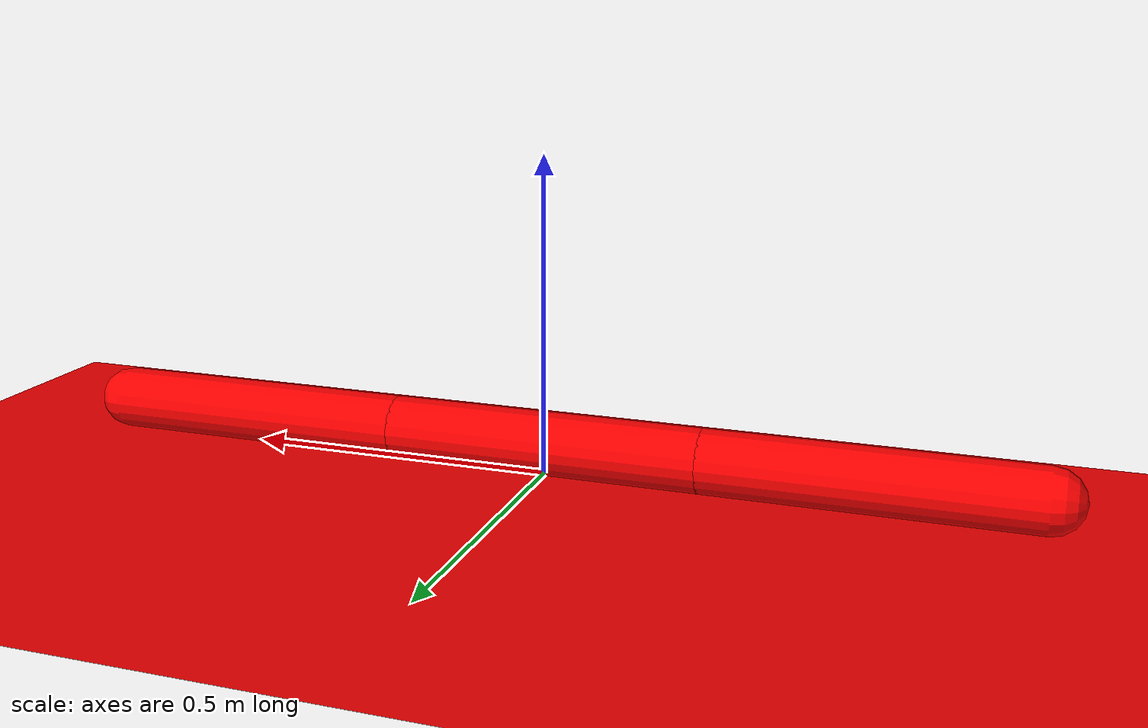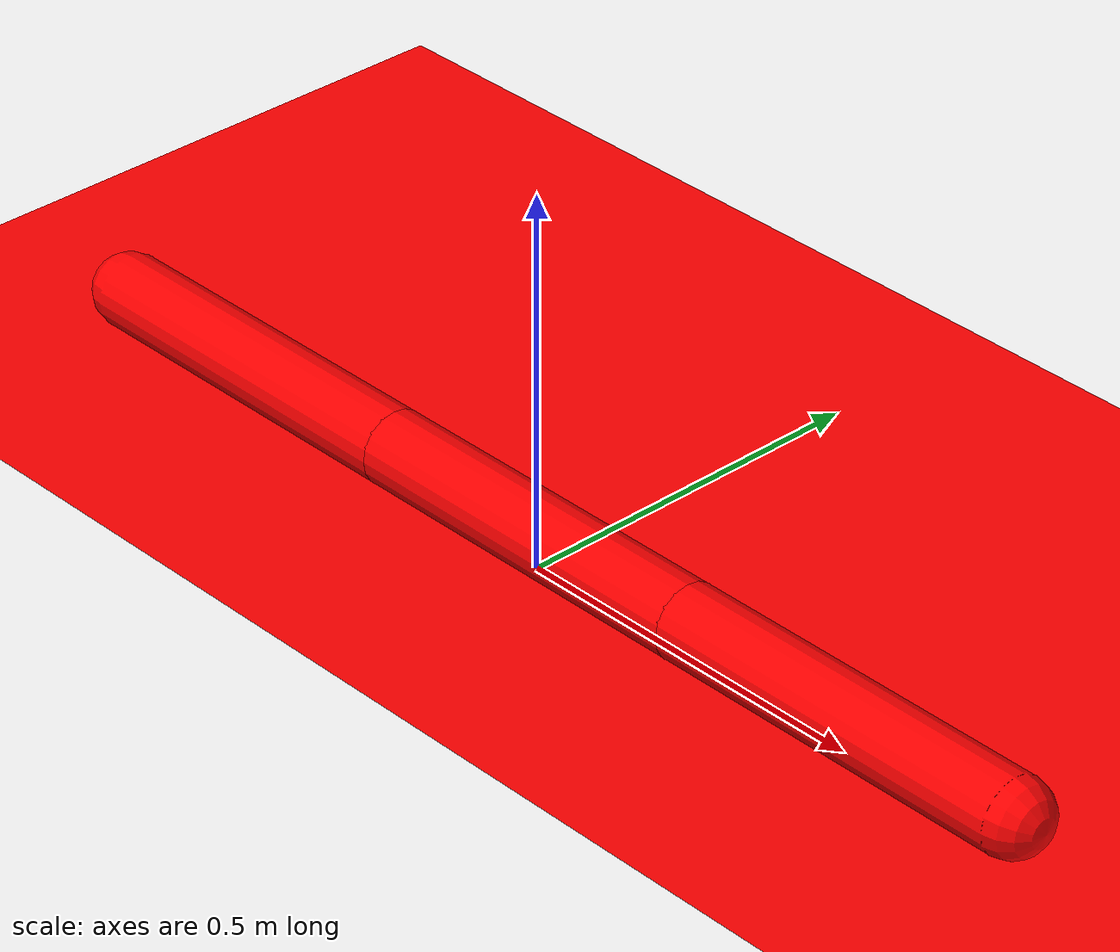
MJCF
<mujoco>
    <compiler angle="degree" coordinate="local" inertiafromgeom="true" />
    <option collision="predefined" density="4000" integrator="RK4" timestep="0.01" viscosity="0.1" />
    <default>
        <geom condim="6" density="5" rgba="1 0 0 1" size=".05" type="sphere" />
        <joint damping=".001" />
        <motor ctrlrange="-1 1" ctrllimited="true" forcerange="-.02 .02" forcelimited="true" />
        <site size="0.012" type="sphere" />
    </default>
    <worldbody>
        <light cutoff="100" diffuse="1 1 1" dir="-0 0 -1.3" directional="true" exponent="1" pos="0 0 1.3" specular=".1 .1 .1" />
        <geom name="floor" size="5 5 0.1" type="plane" condim="6" />
        <!--  ================= SWIMMER ================= /-->
        <body name="robot" pos="0 0 0.05">
            <site name="robot" pos="0.5 0 0" />
            <camera name="vision" mode="trackcom" pos="0 0.1 .2" xyaxes="1 0 0 0 1 1" />
            <geom density="1000" fromto="0.75 0 0 0.25 0 0" size="0.05" type="capsule" />
            <joint axis="1 0 0" name="slider1" pos="0 0 0" type="slide" />
            <joint axis="0 1 0" name="slider2" pos="0 0 0" type="slide" />
            <joint axis="0 0 1" name="rot" pos="0 0 0" type="hinge" />
            <body name="mid" pos="0.25 0 0">
                <geom density="1000" fromto="0 0 0 -0.5 0 0" size="0.05" type="capsule" />
                <joint axis="0 0 1" limited="true" name="rot2" pos="0 0 0" range="-100 100" type="hinge" />
                <body name="back" pos="-0.5 0 0">
                    <geom density="1000" fromto="0 0 0 -0.5 0 0" size="0.05" type="capsule" />
                    <joint axis="0 0 1" limited="true" name="rot3" pos="0 0 0" range="-100 100" type="hinge" />
                </body>
            </body>
        </body>
    </worldbody>
    <sensor>

        <!-- Used for observation -->
        <accelerometer site="robot" name="accelerometer" />
        <velocimeter site="robot" name="velocimeter" />
        <gyro site="robot" name="gyro" />
        <magnetometer site="robot" name="magnetometer" />

        <!-- Used for intrinsic constraints -->
        <subtreecom body="robot" name="subtreecom" />
        <subtreelinvel body="robot" name="subtreelinvel" />
        <subtreeangmom body="robot" name="subtreeangmom" />
    </sensor>
    <actuator>
        <motor ctrllimited="true" ctrlrange="-1 1" gear="150.0" joint="rot2" />
        <motor ctrllimited="true" ctrlrange="-1 1" gear="150.0" joint="rot3" />
    </actuator>
</mujoco>
